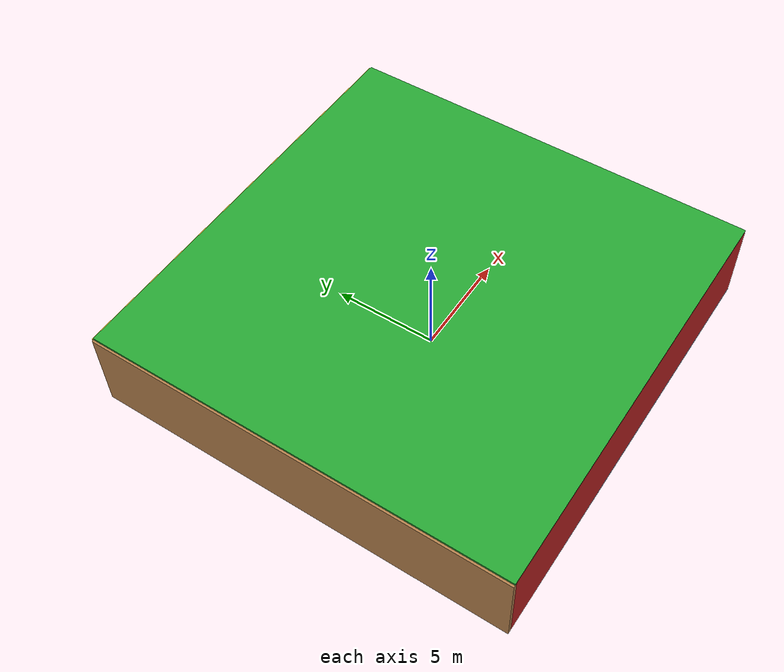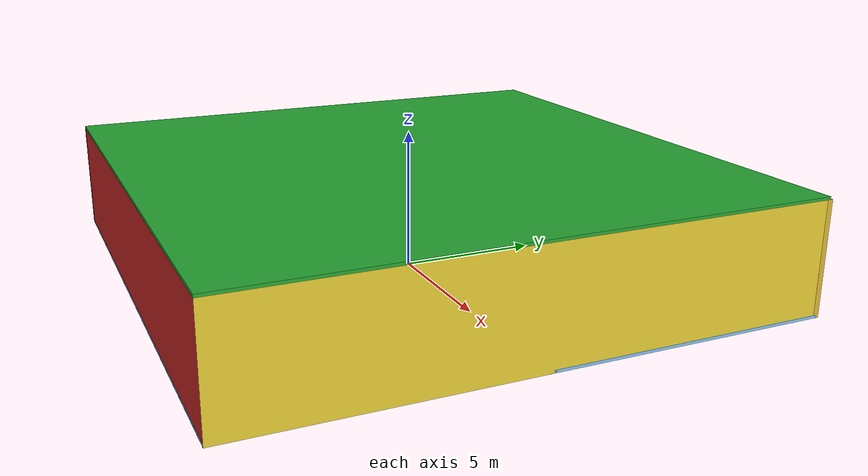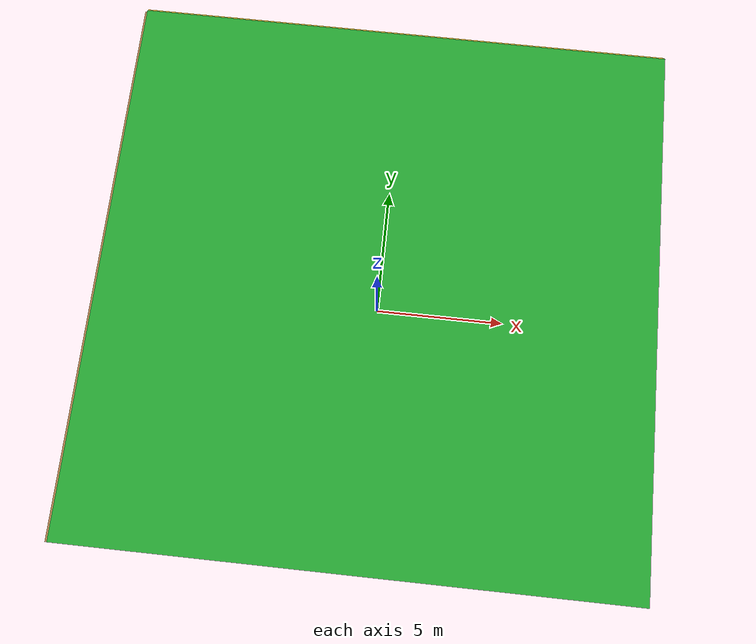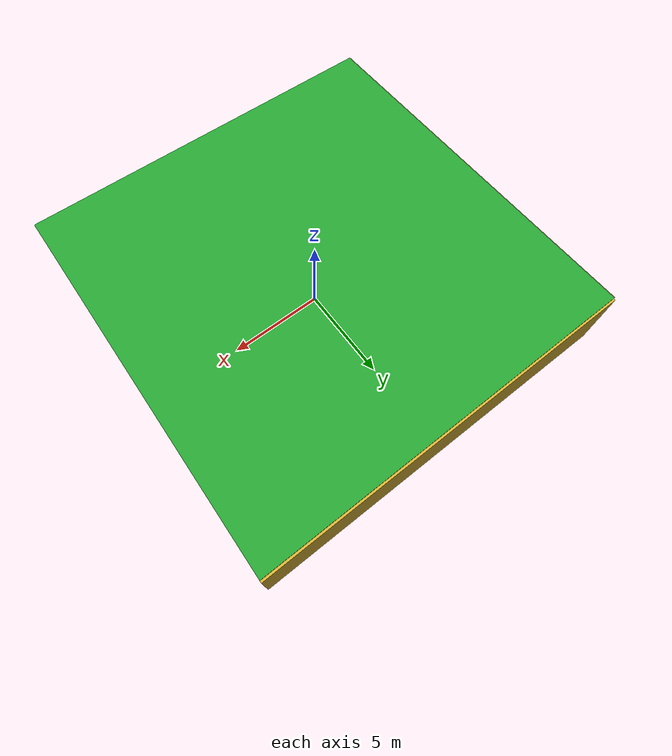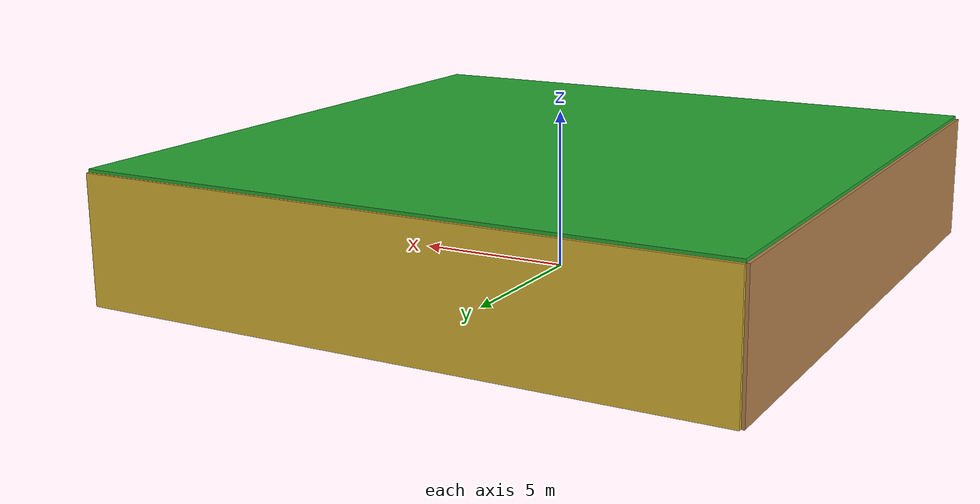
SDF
<sdf version="1.4">
 <world name="default">
  <physics type="ode">
   <max_step_size>0.001</max_step_size>
   <real_time_factor>1</real_time_factor>
   <real_time_update_rate>1000</real_time_update_rate>
   <gravity>0 0 -9.8</gravity>
  </physics>
  <scene><ambient>0.4 0.4 0.4 1</ambient><background>0.7 0.7 0.7 1</background><shadows>1</shadows></scene>
  <model name="Surrounding">
   <static>1</static>
   <link name="Ceiling">
    <collision name="Ceiling_Collision"><geometry><box><size>20 20 0.1</size></box></geometry></collision>
    <visual name="Ceiling_Visual">
     <geometry><box><size>20 20 0.1</size></box></geometry>
     <material>
      <script><uri>file://media/materials/scripts/gazebo.material</uri><name>Gazebo/GreenGlow</name></script>
     </material>
    </visual>
    <pose>0 0 4.05 0 0 0</pose>
   </link>
   <link name="Wall_South">
    <collision name="Wall_South_Collision">
     <geometry><box><size>20 0 4</size></box></geometry>
     <pose>0 0 2 0 -0 0</pose>
    </collision>
    <visual name="Wall_South_Visual">
     <pose>0 0 2 0 -0 0</pose>
     <geometry><box><size>20 0 4</size></box></geometry>
     <material>
      <script><uri>file://media/materials/scripts/gazebo.material</uri><name>Gazebo/RedGlow</name></script>
     </material>
    </visual>
    <velocity_decay><linear>0</linear><angular>0</angular></velocity_decay>
    <pose>0 -10 0 0 -0 0</pose>
   </link>
   <link name="Wall_East">
    <collision name="Wall_21_Collision">
     <geometry><box><size>20 0 4</size></box></geometry>
     <pose>0 0 2 0 -0 0</pose>
    </collision>
    <visual name="Wall_21_Visual">
     <pose>0 0 2 0 -0 0</pose>
     <geometry><box><size>20 0 4</size></box></geometry>
     <material>
      <script><uri>file://media/materials/scripts/gazebo.material</uri><name>Gazebo/ZincYellow</name></script>
     </material>
    </visual>
    <velocity_decay><linear>0</linear><angular>0</angular></velocity_decay>
    <pose>10 0 0 0 -0 1.5708</pose>
   </link>
   <link name="Wall_North">
    <collision name="Wall_22_Collision">
     <geometry><box><size>20 0.2 4</size></box></geometry>
     <pose>0 0 2 0 -0 0</pose>
    </collision>
    <visual name="Wall_22_Visual">
     <pose>0 0 2 0 -0 0</pose>
     <geometry><box><size>20 0.2 4</size></box></geometry>
     <material>
      <script><uri>file://media/materials/scripts/gazebo.material</uri><name>Gazebo/Gold</name></script>
     </material>
    </visual>
    <velocity_decay><linear>0</linear><angular>0</angular></velocity_decay>
    <pose>0 10 0 0 -0 0</pose>
   </link>
   <link name="Wall_West">
    <collision name="Wall_23_Collision">
     <geometry><box><size>20 0.2 4</size></box></geometry>
     <pose>0 0 2 0 -0 0</pose>
    </collision>
    <visual name="Wall_23_Visual">
     <pose>0 0 2 0 -0 0</pose>
     <geometry><box><size>20 0.2 4</size></box></geometry>
     <material>
      <script><uri>file://media/materials/scripts/gazebo.material</uri><name>Gazebo/WoodPallet</name></script>
     </material>
    </visual>
    <velocity_decay><linear>0</linear><angular>0</angular></velocity_decay>
    <pose>-10 0 0 0 0 -1.5708</pose>
   </link>
   <link name="Ground_link">
    <collision name="collision">
     <pose>0 0 .05 0 -0 0</pose>
     <geometry><box><size>20 20 0.1</size></box></geometry>
    </collision>
    <visual name="visual">
     <pose>0 0 .05 0 -0 0</pose>
     <geometry><box><size>20 20 0.1</size></box></geometry>
     <material>
      <script><uri>file://media/materials/scripts/gazebo.material</uri><name>Gazebo/SkyBlue</name></script>
     </material>
    </visual>
   </link>
   <static>1</static>
  </model>
  <spherical_coordinates>
   <surface_model>EARTH_WGS84</surface_model>
   <latitude_deg>0</latitude_deg>
   <longitude_deg>0</longitude_deg>
   <elevation>0</elevation>
   <heading_deg>0</heading_deg>
  </spherical_coordinates>
  <light name="lightball_0" type="diffuse">
   <diffuse>0.8 0.8 0.8 1</diffuse>
   <specular>0.2 0.2 0.2 1</specular>
   <attenuation>
    <range>100</range>
    <constant>0.7</constant>
    <linear>0.01</linear>
    <quadratic>0.001</quadratic>
   </attenuation>
   <direction>-0.5 0.1 -0.9</direction>
   <pose>-3.52182284419 -6.04536520521 0.623557127255 0 0 0</pose>
  </light>
  <light name="lightball_1" type="diffuse">
   <diffuse>0.8 0.8 0.8 1</diffuse>
   <specular>0.2 0.2 0.2 1</specular>
   <attenuation>
    <range>100</range>
    <constant>0.7</constant>
    <linear>0.01</linear>
    <quadratic>0.001</quadratic>
   </attenuation>
   <direction>-0.5 0.1 -0.9</direction>
   <pose>-7.31196395683 -6.50348709818 1.95284653765 0 0 0</pose>
  </light>
  <light name="lightball_2" type="diffuse">
   <diffuse>0.8 0.8 0.8 1</diffuse>
   <specular>0.2 0.2 0.2 1</specular>
   <attenuation>
    <range>100</range>
    <constant>0.7</constant>
    <linear>0.01</linear>
    <quadratic>0.001</quadratic>
   </attenuation>
   <direction>-0.5 0.1 -0.9</direction>
   <pose>2.92174807488 -2.95311026474 3.8686164223 0 0 0</pose>
  </light>
  <light name="lightball_3" type="diffuse">
   <diffuse>0.8 0.8 0.8 1</diffuse>
   <specular>0.2 0.2 0.2 1</specular>
   <attenuation>
    <range>100</range>
    <constant>0.7</constant>
    <linear>0.01</linear>
    <quadratic>0.001</quadratic>
   </attenuation>
   <direction>-0.5 0.1 -0.9</direction>
   <pose>0.584526064485 -2.67517774718 2.33111816958 0 0 0</pose>
  </light>
  <light name="lightball_4" type="diffuse">
   <diffuse>0.8 0.8 0.8 1</diffuse>
   <specular>0.2 0.2 0.2 1</specular>
   <attenuation>
    <range>100</range>
    <constant>0.7</constant>
    <linear>0.01</linear>
    <quadratic>0.001</quadratic>
   </attenuation>
   <direction>-0.5 0.1 -0.9</direction>
   <pose>-3.24981298347 6.44395242637 3.73193765224 0 0 0</pose>
  </light>
  <light name="lightball_5" type="diffuse">
   <diffuse>0.8 0.8 0.8 1</diffuse>
   <specular>0.2 0.2 0.2 1</specular>
   <attenuation>
    <range>100</range>
    <constant>0.7</constant>
    <linear>0.01</linear>
    <quadratic>0.001</quadratic>
   </attenuation>
   <direction>-0.5 0.1 -0.9</direction>
   <pose>-0.134382333422 2.17228174556 2.93770088021 0 0 0</pose>
  </light>
  <light name="lightball_6" type="diffuse">
   <diffuse>0.8 0.8 0.8 1</diffuse>
   <specular>0.2 0.2 0.2 1</specular>
   <attenuation>
    <range>100</range>
    <constant>0.7</constant>
    <linear>0.01</linear>
    <quadratic>0.001</quadratic>
   </attenuation>
   <direction>-0.5 0.1 -0.9</direction>
   <pose>7.24898355402 -7.34186103646 2.50734884806 0 0 0</pose>
  </light>
  <include>
   <uri>model://construction_cone</uri>
   <pose>-1.20649737608 -6.82469771701 0 0 0 2.02503557088</pose>
  </include>
  <include><uri>model://table</uri><pose>-2.60040315924 -4.4195013787 0 0 0 0.162873680663</pose></include>
  <include><uri>model://cabinet</uri><pose>2.68173001596 -8.53868292578 0 0 0 1.92068823737</pose></include>
  <include><uri>model://cabinet</uri><pose>5.6137790862 3.99576236383 0 0 0 0.254964137242</pose></include>
  <include><uri>model://cabinet</uri><pose>7.72763998755 -6.41770393978 0 0 0 1.87459965137</pose></include>
 </world>
</sdf>

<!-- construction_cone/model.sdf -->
<sdf version="1.5">
  <model name="Construction Cone">
    <link name="link">
      <collision name="collision">
        <geometry>
          <mesh>
            <scale>10 10 10</scale>
            <uri>file://isr-testbed/construction_cone/meshes/construction_cone.dae</uri>
          </mesh>
        </geometry>
      </collision>
      <visual name="visual">
        <geometry>
          <mesh>
            <scale>10 10 10</scale>
            <uri>file://isr-testbed/construction_cone/meshes/construction_cone.dae</uri>
          </mesh>
        </geometry>
      </visual>
    </link>
  </model>
</sdf>

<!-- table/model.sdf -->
<sdf version="1.5">
  <model name="table">
    <static>true</static>
    <link name="link">
      <collision name="surface">
        <pose>0 0 1.0 0 0 0</pose>
        <geometry>
          <box>
            <size>1.5 0.8 0.03</size>
          </box>
        </geometry>
        <surface>
          <friction>
            <ode>
              <mu>0.6</mu>
              <mu2>0.6</mu2>
            </ode>
          </friction>
        </surface>
      </collision>
      <visual name="visual1">
        <pose>0 0 1.0 0 0 0</pose>
        <geometry>
          <box>
            <size>1.5 0.8 0.03</size>
          </box>
        </geometry>
        <material>
          <script>
            <uri>model://media/materials/scripts/gazebo.material</uri>
            <name>Gazebo/Wood</name>
          </script>
        </material>
      </visual>
      <collision name="front_left_leg">
        <pose>0.68 0.38 0.5 0 0 0</pose>
        <geometry>
          <cylinder>
            <radius>0.02</radius>
            <length>1.0</length>
          </cylinder>
        </geometry>
      </collision>
      <visual name="front_left_leg">
        <pose>0.68 0.38 0.5 0 0 0</pose>
        <geometry>
          <cylinder>
            <radius>0.02</radius>
            <length>1.0</length>
          </cylinder>
        </geometry>
        <material>
          <script>
            <uri>model://media/materials/scripts/gazebo.material</uri>
            <name>Gazebo/Grey</name>
          </script>
        </material>
      </visual>
      <collision name="front_right_leg">
        <pose>0.68 -0.38 0.5 0 0 0</pose>
        <geometry>
          <cylinder>
            <radius>0.02</radius>
            <length>1.0</length>
          </cylinder>
        </geometry>
      </collision>
      <visual name="front_right_leg">
        <pose>0.68 -0.38 0.5 0 0 0</pose>
        <geometry>
          <cylinder>
            <radius>0.02</radius>
            <length>1.0</length>
          </cylinder>
        </geometry>
        <material>
          <script>
            <uri>model://media/materials/scripts/gazebo.material</uri>
            <name>Gazebo/Grey</name>
          </script>
        </material>
      </visual>
      <collision name="back_right_leg">
        <pose>-0.68 -0.38 0.5 0 0 0</pose>
        <geometry>
          <cylinder>
            <radius>0.02</radius>
            <length>1.0</length>
          </cylinder>
        </geometry>
      </collision>
      <visual name="back_right_leg">
        <pose>-0.68 -0.38 0.5 0 0 0</pose>
        <geometry>
          <cylinder>
            <radius>0.02</radius>
            <length>1.0</length>
          </cylinder>
        </geometry>
        <material>
          <script>
            <uri>model://media/materials/scripts/gazebo.material</uri>
            <name>Gazebo/Grey</name>
          </script>
        </material>
      </visual>
      <collision name="back_left_leg">
        <pose>-0.68 0.38 0.5 0 0 0</pose>
        <geometry>
          <cylinder>
            <radius>0.02</radius>
            <length>1.0</length>
          </cylinder>
        </geometry>
      </collision>
      <visual name="back_left_leg">
        <pose>-0.68 0.38 0.5 0 0 0</pose>
        <geometry>
          <cylinder>
            <radius>0.02</radius>
            <length>1.0</length>
          </cylinder>
        </geometry>
        <material>
          <script>
            <uri>model://media/materials/scripts/gazebo.material</uri>
            <name>Gazebo/Grey</name>
          </script>
        </material>
      </visual>
    </link>
  </model>
</sdf>

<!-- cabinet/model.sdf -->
<sdf version="1.5">
  <model name="cabinet">
    <static>true</static>
    <link name="cabinet_bottom_plate">
      <inertial>
        <pose>0 0 -1 0 0 0</pose>
        <inertia>
          <ixx>2.050000</ixx>
          <ixy>0</ixy>
          <ixz>0</ixz>
          <iyy>2.050000</iyy>
          <iyz>0</iyz>
          <izz>2.050000</izz>
        </inertia>
        <mass>25.000000</mass>
      </inertial>
      <collision name="cabinet_bottom_plate_geom">
        <pose>0 0 0.010000 0 0 0</pose>
        <geometry>
          <box>
            <size>0.450000 0.450000 0.020000</size>
          </box>
        </geometry>
      </collision>
      <visual name="cabinet_bottom_plate_geom_visual">
        <pose>0 0 0.010000 0 0 0</pose>
        <geometry>
          <box>
            <size>0.450000 0.450000 0.020000</size>
          </box>
        </geometry>
        <material>
          <script>
            <uri>model://media/materials/scripts/gazebo.material</uri>
            <name>Gazebo/Wood</name>
          </script>
        </material>
      </visual>
      <collision name="cabinet_bottom_plate_geom_cabinet_back_plate">
        <pose>0.235000 0 0.510000 0 0 0</pose>
        <geometry>
          <box>
            <size>0.020000 0.450000 1.020000</size>
          </box>
        </geometry>
      </collision>
      <visual name="cabinet_bottom_plate_geom_cabinet_back_plate_visual">
        <pose>0.235000 0 0.510000 0 0 0</pose>
        <geometry>
          <box>
            <size>0.020000 0.450000 1.020000</size>
          </box>
        </geometry>
        <material>
          <script>
            <uri>model://media/materials/scripts/gazebo.material</uri>
            <name>Gazebo/Wood</name>
          </script>
        </material>
      </visual>
      <collision name="cabinet_bottom_plate_geom_cabinet_left_plate">
        <pose>0 0.235000 0.510000 0 0 0</pose>
        <geometry>
          <box>
            <size>0.450000 0.020000 1.020000</size>
          </box>
        </geometry>
      </collision>
      <visual name="cabinet_bottom_plate_geom_cabinet_left_plate_visual">
        <pose>0 0.235000 0.510000 0 0 0</pose>
        <geometry>
          <box>
            <size>0.450000 0.020000 1.020000</size>
          </box>
        </geometry>
        <material>
          <script>
            <uri>model://media/materials/scripts/gazebo.material</uri>
            <name>Gazebo/Wood</name>
          </script>
        </material>
      </visual>
      <collision name="cabinet_bottom_plate_geom_cabinet_middle_plate">
        <pose>0 0 0.510000 0 0 0</pose>
        <geometry>
          <box>
            <size>0.450000 0.450000 0.020000</size>
          </box>
        </geometry>
      </collision>
      <visual name="cabinet_bottom_plate_geom_cabinet_middle_plate_visual">
        <pose>0 0 0.510000 0 0 0</pose>
        <geometry>
          <box>
            <size>0.450000 0.450000 0.020000</size>
          </box>
        </geometry>
        <material>
          <script>
            <uri>model://media/materials/scripts/gazebo.material</uri>
            <name>Gazebo/Wood</name>
          </script>
        </material>
      </visual>
      <collision name="cabinet_bottom_plate_geom_cabinet_right_plate">
        <pose>0 -0.235000 0.510000 0 0 0</pose>
        <geometry>
          <box>
            <size>0.450000 0.020000 1.020000</size>
          </box>
        </geometry>
      </collision>
      <visual name="cabinet_bottom_plate_geom_cabinet_right_plate_visual">
        <pose>0 -0.235000 0.510000 0 0 0</pose>
        <geometry>
          <box>
            <size>0.450000 0.020000 1.020000</size>
          </box>
        </geometry>
        <material>
          <script>
            <uri>model://media/materials/scripts/gazebo.material</uri>
            <name>Gazebo/Wood</name>
          </script>
        </material>
      </visual>
      <collision name="cabinet_bottom_plate_geom_cabinet_top_plate">
        <pose>0 0 1.010000 0 0 0</pose>
        <geometry>
          <box>
            <size>0.450000 0.450000 0.020000</size>
          </box>
        </geometry>
      </collision>
      <visual name="cabinet_bottom_plate_geom_cabinet_top_plate_visual">
        <pose>0 0 1.010000 0 0 0</pose>
        <geometry>
          <box>
            <size>0.450000 0.450000 0.020000</size>
          </box>
        </geometry>
        <material>
          <script>
            <uri>model://media/materials/scripts/gazebo.material</uri>
            <name>Gazebo/Wood</name>
          </script>
        </material>
      </visual>
    </link>
  </model>
</sdf>
